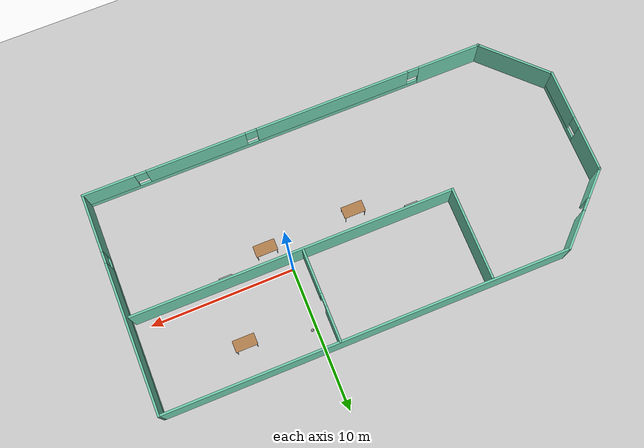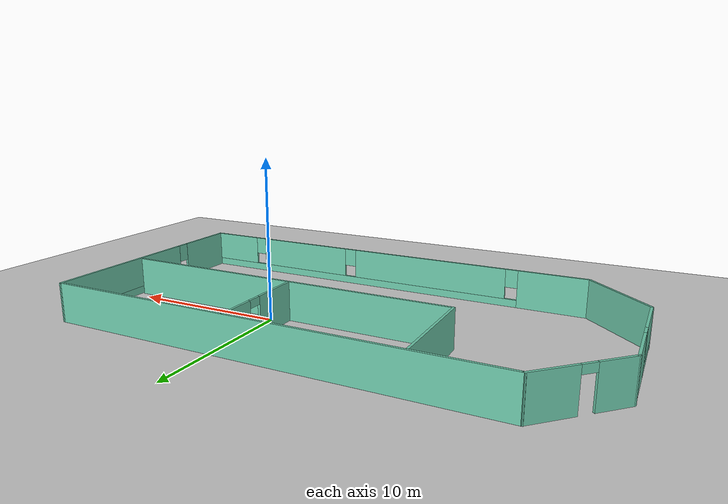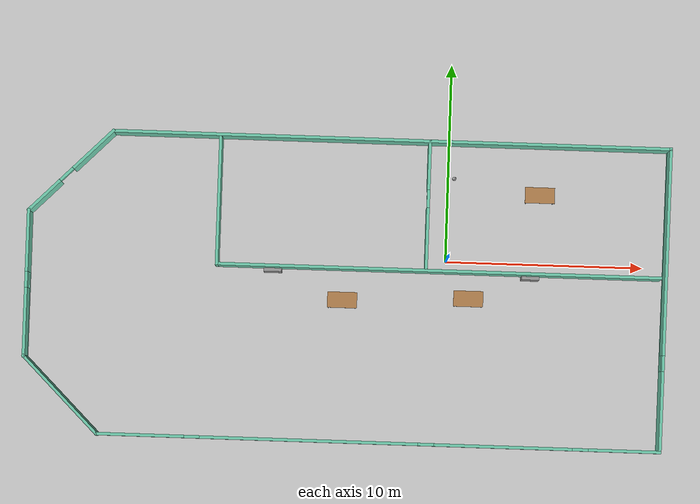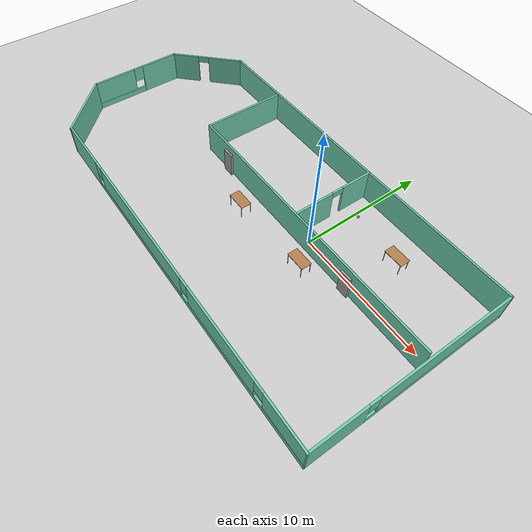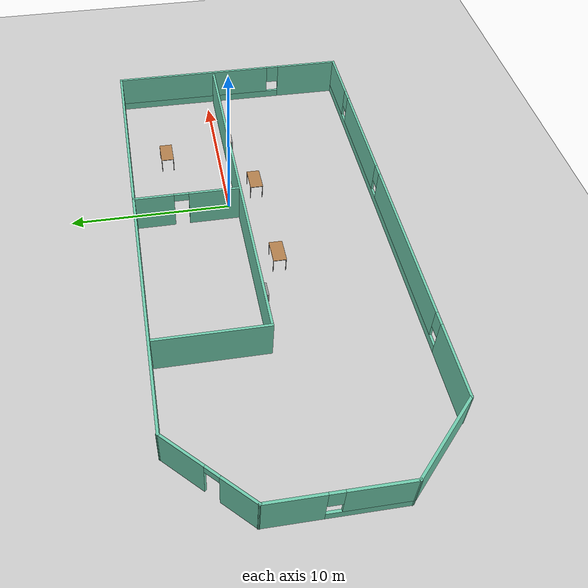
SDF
<sdf version="1.6">
 <world name="default">
  <light name="sun" type="directional">
   <pose>0 0 10 0 -0 0</pose>
   <diffuse>0.8 0.8 0.8 1</diffuse>
   <specular>0.2 0.2 0.2 1</specular>
   <attenuation>
    <range>1000</range>
    <constant>0.9</constant>
    <linear>0.01</linear>
    <quadratic>0.001</quadratic>
   </attenuation>
   <direction>-0.5 0.1 -0.9</direction>
  </light>
  <model name="ground_plane">
   <static>1</static>
   <link name="link">
    <collision name="collision">
     <geometry><plane><normal>0 0 1</normal><size>100 100</size></plane></geometry>
     <surface>
      <contact><collide_bitmask>65535</collide_bitmask></contact>
      <friction><ode><mu>100</mu><mu2>50</mu2></ode></friction>
     </surface>
    </collision>
    <visual name="visual">
     <cast_shadows>0</cast_shadows>
     <geometry><plane><normal>0 0 1</normal><size>100 100</size></plane></geometry>
     <material>
      <script><uri>file://media/materials/scripts/gazebo.material</uri><name>Gazebo/Grey</name></script>
     </material>
    </visual>
   </link>
  </model>
  <gravity>0 0 -9.8</gravity>
  <magnetic_field>6e-06 2.3e-05 -4.2e-05</magnetic_field>
  <atmosphere type="adiabatic"/>
  <physics name="default_physics" default="0" type="ode">
   <max_step_size>0.001</max_step_size>
   <real_time_factor>1</real_time_factor>
   <real_time_update_rate>1000</real_time_update_rate>
  </physics>
  <scene><ambient>0.4 0.4 0.4 1</ambient><background>0.7 0.7 0.7 1</background><shadows>1</shadows></scene>
  <spherical_coordinates>
   <surface_model>EARTH_WGS84</surface_model>
   <latitude_deg>0</latitude_deg>
   <longitude_deg>0</longitude_deg>
   <elevation>0</elevation>
   <heading_deg>0</heading_deg>
  </spherical_coordinates>
  <model name="home_model">
   <pose>-4.99174 -1.66388 0 0 -0 0</pose>
   <link name="Door_0">
    <collision name="Door_0_Collision">
     <geometry><box><size>0.9 0.17 2</size></box></geometry>
     <pose>0 0 1 0 -0 0</pose>
    </collision>
    <visual name="Door_0_Visual">
     <pose>0 0 1 0 -0 0</pose>
     <geometry><box><size>0.9 0.17 2</size></box></geometry>
     <material>
      <script><uri>file://media/materials/scripts/gazebo.material</uri><name>Gazebo/Grey</name></script>
     </material>
    </visual>
    <pose>-3.73693 0.918157 0 0 -0 0</pose>
   </link>
   <link name="Door_1">
    <collision name="Door_1_Collision">
     <geometry><box><size>0.9 0.17 2</size></box></geometry>
     <pose>0 0 1 0 -0 0</pose>
    </collision>
    <visual name="Door_1_Visual">
     <pose>0 0 1 0 -0 0</pose>
     <geometry><box><size>0.9 0.17 2</size></box></geometry>
     <material>
      <script><uri>file://media/materials/scripts/gazebo.material</uri><name>Gazebo/Grey</name></script>
     </material>
    </visual>
    <pose>9.27092 0.918157 0 0 -0 0</pose>
   </link>
   <link name="Wall_11">
    <collision name="Wall_11_Collision">
     <geometry><box><size>6.5 0.15 2.5</size></box></geometry>
     <pose>0 0 1.25 0 -0 0</pose>
    </collision>
    <visual name="Wall_11_Visual">
     <pose>0 0 1.25 0 -0 0</pose>
     <geometry><box><size>6.5 0.15 2.5</size></box></geometry>
     <material>
      <script><uri>file://media/materials/scripts/gazebo.material</uri><name>Gazebo/Grey</name></script>
      <ambient>0.435294 0.796078 0.67451 1</ambient>
     </material>
     <meta><layer>0</layer></meta>
    </visual>
    <pose>-6.55681 4.29256 0 0 0 -1.5708</pose>
   </link>
   <link name="Wall_12">
    <collision name="Wall_12_Collision">
     <geometry><box><size>22.5 0.15 2.5</size></box></geometry>
     <pose>0 0 1.25 0 -0 0</pose>
    </collision>
    <visual name="Wall_12_Visual">
     <pose>0 0 1.25 0 -0 0</pose>
     <geometry><box><size>22.5 0.15 2.5</size></box></geometry>
     <material>
      <script><uri>file://media/materials/scripts/gazebo.material</uri><name>Gazebo/Grey</name></script>
      <ambient>0.435294 0.796078 0.67451 1</ambient>
     </material>
     <meta><layer>0</layer></meta>
    </visual>
    <pose>4.61819 1.11756 0 0 -0 0</pose>
   </link>
   <link name="Wall_14">
    <pose>3.99501 4.42901 0 0 0 -1.5708</pose>
    <visual name="Wall_14_Visual_0">
     <pose>-2.00482 0 1.25 0 -0 0</pose>
     <geometry><box><size>2.49037 0.15 2.5</size></box></geometry>
     <material>
      <script><uri>file://media/materials/scripts/gazebo.material</uri><name>Gazebo/Grey</name></script>
      <ambient>0.435294 0.796078 0.67451 1</ambient>
     </material>
     <meta><layer>0</layer></meta>
    </visual>
    <collision name="Wall_14_Collision_0">
     <geometry><box><size>2.49037 0.15 2.5</size></box></geometry>
     <pose>-2.00482 0 1.25 0 -0 0</pose>
    </collision>
    <visual name="Wall_14_Visual_1">
     <pose>1.69518 0 1.25 0 -0 0</pose>
     <geometry><box><size>3.10963 0.15 2.5</size></box></geometry>
     <material>
      <script><uri>file://media/materials/scripts/gazebo.material</uri><name>Gazebo/Grey</name></script>
      <ambient>0.435294 0.796078 0.67451 1</ambient>
     </material>
     <meta><layer>0</layer></meta>
    </visual>
    <collision name="Wall_14_Collision_1">
     <geometry><box><size>3.10963 0.15 2.5</size></box></geometry>
     <pose>1.69518 0 1.25 0 -0 0</pose>
    </collision>
    <visual name="Wall_14_Visual_2">
     <pose>-0.309635 0 2.25 0 -0 0</pose>
     <geometry><box><size>0.9 0.15 0.5</size></box></geometry>
     <material>
      <script><uri>file://media/materials/scripts/gazebo.material</uri><name>Gazebo/Grey</name></script>
      <ambient>0.435294 0.796078 0.67451 1</ambient>
     </material>
     <meta><layer>0</layer></meta>
    </visual>
    <collision name="Wall_14_Collision_2">
     <geometry><box><size>0.9 0.15 0.5</size></box></geometry>
     <pose>-0.309635 0 2.25 0 -0 0</pose>
    </collision>
   </link>
   <link name="Wall_4">
    <collision name="Wall_4_Collision">
     <geometry><box><size>28.25 0.15 2.5</size></box></geometry>
     <pose>0 0 1.25 0 -0 0</pose>
    </collision>
    <visual name="Wall_4_Visual">
     <pose>0 0 1.25 0 -0 0</pose>
     <geometry><box><size>28.25 0.15 2.5</size></box></geometry>
     <material>
      <script><uri>file://media/materials/scripts/gazebo.material</uri><name>Gazebo/Grey</name></script>
      <ambient>0.435294 0.796078 0.67451 1</ambient>
     </material>
     <meta><layer>0</layer></meta>
    </visual>
    <pose>2.08357 7.6348 0 0 -0 3.14159</pose>
   </link>
   <link name="Wall_5">
    <pose>-14.0347 5.56651 0 0 0 -2.35619</pose>
    <visual name="Wall_5_Visual_0">
     <pose>-1.57656 0 1.25 0 -0 0</pose>
     <geometry><box><size>2.84689 0.15 2.5</size></box></geometry>
     <material>
      <script><uri>file://media/materials/scripts/gazebo.material</uri><name>Gazebo/Grey</name></script>
      <ambient>0.435294 0.796078 0.67451 1</ambient>
     </material>
     <meta><layer>0</layer></meta>
    </visual>
    <collision name="Wall_5_Collision_0">
     <geometry><box><size>2.84689 0.15 2.5</size></box></geometry>
     <pose>-1.57656 0 1.25 0 -0 0</pose>
    </collision>
    <visual name="Wall_5_Visual_1">
     <pose>1.87344 0 1.25 0 -0 0</pose>
     <geometry><box><size>2.25311 0.15 2.5</size></box></geometry>
     <material>
      <script><uri>file://media/materials/scripts/gazebo.material</uri><name>Gazebo/Grey</name></script>
      <ambient>0.435294 0.796078 0.67451 1</ambient>
     </material>
     <meta><layer>0</layer></meta>
    </visual>
    <collision name="Wall_5_Collision_1">
     <geometry><box><size>2.25311 0.15 2.5</size></box></geometry>
     <pose>1.87344 0 1.25 0 -0 0</pose>
    </collision>
    <visual name="Wall_5_Visual_2">
     <pose>0.296889 0 2.25 0 -0 0</pose>
     <geometry><box><size>0.9 0.15 0.5</size></box></geometry>
     <material>
      <script><uri>file://media/materials/scripts/gazebo.material</uri><name>Gazebo/Grey</name></script>
      <ambient>0.435294 0.796078 0.67451 1</ambient>
     </material>
     <meta><layer>0</layer></meta>
    </visual>
    <collision name="Wall_5_Collision_2">
     <geometry><box><size>0.9 0.15 0.5</size></box></geometry>
     <pose>0.296889 0 2.25 0 -0 0</pose>
    </collision>
   </link>
   <link name="Wall_6">
    <pose>-16.103 -0.176777 0 0 0 -1.5708</pose>
    <visual name="Wall_6_Visual_0">
     <pose>-2.16167 0 1.25 0 -0 0</pose>
     <geometry><box><size>3.17667 0.15 2.5</size></box></geometry>
     <material>
      <script><uri>file://media/materials/scripts/gazebo.material</uri><name>Gazebo/Grey</name></script>
      <ambient>0.435294 0.796078 0.67451 1</ambient>
     </material>
     <meta><layer>0</layer></meta>
    </visual>
    <collision name="Wall_6_Collision_0">
     <geometry><box><size>3.17667 0.15 2.5</size></box></geometry>
     <pose>-2.16167 0 1.25 0 -0 0</pose>
    </collision>
    <visual name="Wall_6_Visual_1">
     <pose>1.58833 0 0.25 0 -0 0</pose>
     <geometry><box><size>4.32333 0.15 0.5</size></box></geometry>
     <material>
      <script><uri>file://media/materials/scripts/gazebo.material</uri><name>Gazebo/Grey</name></script>
      <ambient>0.435294 0.796078 0.67451 1</ambient>
     </material>
     <meta><layer>0</layer></meta>
    </visual>
    <collision name="Wall_6_Collision_1">
     <geometry><box><size>4.32333 0.15 0.5</size></box></geometry>
     <pose>1.58833 0 0.25 0 -0 0</pose>
    </collision>
    <visual name="Wall_6_Visual_2">
     <pose>1.98833 0 1.5 0 -0 0</pose>
     <geometry><box><size>3.52333 0.15 2</size></box></geometry>
     <material>
      <script><uri>file://media/materials/scripts/gazebo.material</uri><name>Gazebo/Grey</name></script>
      <ambient>0.435294 0.796078 0.67451 1</ambient>
     </material>
     <meta><layer>0</layer></meta>
    </visual>
    <collision name="Wall_6_Collision_2">
     <geometry><box><size>3.52333 0.15 2</size></box></geometry>
     <pose>1.98833 0 1.5 0 -0 0</pose>
    </collision>
    <visual name="Wall_6_Visual_3">
     <pose>-0.173333 0 1.9 0 -0 0</pose>
     <geometry><box><size>0.8 0.15 1.2</size></box></geometry>
     <material>
      <script><uri>file://media/materials/scripts/gazebo.material</uri><name>Gazebo/Grey</name></script>
      <ambient>0.435294 0.796078 0.67451 1</ambient>
     </material>
     <meta><layer>0</layer></meta>
    </visual>
    <collision name="Wall_6_Collision_3">
     <geometry><box><size>0.8 0.15 1.2</size></box></geometry>
     <pose>-0.173333 0 1.9 0 -0 0</pose>
    </collision>
   </link>
   <link name="Wall_7">
    <collision name="Wall_7_Collision">
     <geometry><box><size>5.5 0.15 2.5</size></box></geometry>
     <pose>0 0 1.25 0 -0 0</pose>
    </collision>
    <visual name="Wall_7_Visual">
     <pose>0 0 1.25 0 -0 0</pose>
     <geometry><box><size>5.5 0.15 2.5</size></box></geometry>
     <material>
      <script><uri>file://media/materials/scripts/gazebo.material</uri><name>Gazebo/Grey</name></script>
      <ambient>0.435294 0.796078 0.67451 1</ambient>
     </material>
     <meta><layer>0</layer></meta>
    </visual>
    <pose>-14.2115 -5.74329 0 0 0 -0.785398</pose>
   </link>
   <link name="Wall_8">
    <pose>1.85501 -7.6348 0 0 -0 0</pose>
    <visual name="Wall_8_Visual_0">
     <pose>-12.0051 0 1.25 0 -0 0</pose>
     <geometry><box><size>4.48972 0.15 2.5</size></box></geometry>
     <material>
      <script><uri>file://media/materials/scripts/gazebo.material</uri><name>Gazebo/Grey</name></script>
      <ambient>0.435294 0.796078 0.67451 1</ambient>
     </material>
     <meta><layer>0</layer></meta>
    </visual>
    <collision name="Wall_8_Collision_0">
     <geometry><box><size>4.48972 0.15 2.5</size></box></geometry>
     <pose>-12.0051 0 1.25 0 -0 0</pose>
    </collision>
    <visual name="Wall_8_Visual_1">
     <pose>2.24486 0 0.25 0 -0 0</pose>
     <geometry><box><size>24.0103 0.15 0.5</size></box></geometry>
     <material>
      <script><uri>file://media/materials/scripts/gazebo.material</uri><name>Gazebo/Grey</name></script>
      <ambient>0.435294 0.796078 0.67451 1</ambient>
     </material>
     <meta><layer>0</layer></meta>
    </visual>
    <collision name="Wall_8_Collision_1">
     <geometry><box><size>24.0103 0.15 0.5</size></box></geometry>
     <pose>2.24486 0 0.25 0 -0 0</pose>
    </collision>
    <visual name="Wall_8_Visual_2">
     <pose>-3.47943 0 1.5 0 -0 0</pose>
     <geometry><box><size>10.9617 0.15 2</size></box></geometry>
     <material>
      <script><uri>file://media/materials/scripts/gazebo.material</uri><name>Gazebo/Grey</name></script>
      <ambient>0.435294 0.796078 0.67451 1</ambient>
     </material>
     <meta><layer>0</layer></meta>
    </visual>
    <collision name="Wall_8_Collision_2">
     <geometry><box><size>10.9617 0.15 2</size></box></geometry>
     <pose>-3.47943 0 1.5 0 -0 0</pose>
    </collision>
    <visual name="Wall_8_Visual_3">
     <pose>6.28759 0 1.5 0 -0 0</pose>
     <geometry><box><size>6.97235 0.15 2</size></box></geometry>
     <material>
      <script><uri>file://media/materials/scripts/gazebo.material</uri><name>Gazebo/Grey</name></script>
      <ambient>0.435294 0.796078 0.67451 1</ambient>
     </material>
     <meta><layer>0</layer></meta>
    </visual>
    <collision name="Wall_8_Collision_3">
     <geometry><box><size>6.97235 0.15 2</size></box></geometry>
     <pose>6.28759 0 1.5 0 -0 0</pose>
    </collision>
    <visual name="Wall_8_Visual_4">
     <pose>12.4119 0 1.5 0 -0 0</pose>
     <geometry><box><size>3.67624 0.15 2</size></box></geometry>
     <material>
      <script><uri>file://media/materials/scripts/gazebo.material</uri><name>Gazebo/Grey</name></script>
      <ambient>0.435294 0.796078 0.67451 1</ambient>
     </material>
     <meta><layer>0</layer></meta>
    </visual>
    <collision name="Wall_8_Collision_4">
     <geometry><box><size>3.67624 0.15 2</size></box></geometry>
     <pose>12.4119 0 1.5 0 -0 0</pose>
    </collision>
    <visual name="Wall_8_Visual_5">
     <pose>-9.36028 0 1.9 0 -0 0</pose>
     <geometry><box><size>0.8 0.15 1.2</size></box></geometry>
     <material>
      <script><uri>file://media/materials/scripts/gazebo.material</uri><name>Gazebo/Grey</name></script>
      <ambient>0.435294 0.796078 0.67451 1</ambient>
     </material>
     <meta><layer>0</layer></meta>
    </visual>
    <collision name="Wall_8_Collision_5">
     <geometry><box><size>0.8 0.15 1.2</size></box></geometry>
     <pose>-9.36028 0 1.9 0 -0 0</pose>
    </collision>
    <visual name="Wall_8_Visual_6">
     <pose>2.40141 0 1.9 0 -0 0</pose>
     <geometry><box><size>0.8 0.15 1.2</size></box></geometry>
     <material>
      <script><uri>file://media/materials/scripts/gazebo.material</uri><name>Gazebo/Grey</name></script>
      <ambient>0.435294 0.796078 0.67451 1</ambient>
     </material>
     <meta><layer>0</layer></meta>
    </visual>
    <collision name="Wall_8_Collision_6">
     <geometry><box><size>0.8 0.15 1.2</size></box></geometry>
     <pose>2.40141 0 1.9 0 -0 0</pose>
    </collision>
    <visual name="Wall_8_Visual_7">
     <pose>10.1738 0 1.9 0 -0 0</pose>
     <geometry><box><size>0.8 0.15 1.2</size></box></geometry>
     <material>
      <script><uri>file://media/materials/scripts/gazebo.material</uri><name>Gazebo/Grey</name></script>
      <ambient>0.435294 0.796078 0.67451 1</ambient>
     </material>
     <meta><layer>0</layer></meta>
    </visual>
    <collision name="Wall_8_Collision_7">
     <geometry><box><size>0.8 0.15 1.2</size></box></geometry>
     <pose>10.1738 0 1.9 0 -0 0</pose>
    </collision>
   </link>
   <link name="Wall_9">
    <pose>16.0818 0 0 0 -0 1.56401</pose>
    <visual name="Wall_9_Visual_0">
     <pose>-5.63519 0 1.25 0 -0 0</pose>
     <geometry><box><size>4.14957 0.15 2.5</size></box></geometry>
     <material>
      <script><uri>file://media/materials/scripts/gazebo.material</uri><name>Gazebo/Grey</name></script>
      <ambient>0.435294 0.796078 0.67451 1</ambient>
     </material>
     <meta><layer>0</layer></meta>
    </visual>
    <collision name="Wall_9_Collision_0">
     <geometry><box><size>4.14957 0.15 2.5</size></box></geometry>
     <pose>-5.63519 0 1.25 0 -0 0</pose>
    </collision>
    <visual name="Wall_9_Visual_1">
     <pose>2.07478 0 0.25 0 -0 0</pose>
     <geometry><box><size>11.2704 0.15 0.5</size></box></geometry>
     <material>
      <script><uri>file://media/materials/scripts/gazebo.material</uri><name>Gazebo/Grey</name></script>
      <ambient>0.435294 0.796078 0.67451 1</ambient>
     </material>
     <meta><layer>0</layer></meta>
    </visual>
    <collision name="Wall_9_Collision_1">
     <geometry><box><size>11.2704 0.15 0.5</size></box></geometry>
     <pose>2.07478 0 0.25 0 -0 0</pose>
    </collision>
    <visual name="Wall_9_Visual_2">
     <pose>2.47478 0 1.5 0 -0 0</pose>
     <geometry><box><size>10.4704 0.15 2</size></box></geometry>
     <material>
      <script><uri>file://media/materials/scripts/gazebo.material</uri><name>Gazebo/Grey</name></script>
      <ambient>0.435294 0.796078 0.67451 1</ambient>
     </material>
     <meta><layer>0</layer></meta>
    </visual>
    <collision name="Wall_9_Collision_2">
     <geometry><box><size>10.4704 0.15 2</size></box></geometry>
     <pose>2.47478 0 1.5 0 -0 0</pose>
    </collision>
    <visual name="Wall_9_Visual_3">
     <pose>-3.1604 0 1.9 0 -0 0</pose>
     <geometry><box><size>0.8 0.15 1.2</size></box></geometry>
     <material>
      <script><uri>file://media/materials/scripts/gazebo.material</uri><name>Gazebo/Grey</name></script>
      <ambient>0.435294 0.796078 0.67451 1</ambient>
     </material>
     <meta><layer>0</layer></meta>
    </visual>
    <collision name="Wall_9_Collision_3">
     <geometry><box><size>0.8 0.15 1.2</size></box></geometry>
     <pose>-3.1604 0 1.9 0 -0 0</pose>
    </collision>
   </link>
   <static>1</static>
  </model>
  <model name="table">
   <static>1</static>
   <link name="link">
    <collision name="surface">
     <pose>0 0 1 0 -0 0</pose>
     <geometry><box><size>1.5 0.8 0.03</size></box></geometry>
     <surface><friction><ode><mu>0.6</mu><mu2>0.6</mu2></ode></friction></surface>
    </collision>
    <visual name="visual1">
     <pose>0 0 1 0 -0 0</pose>
     <geometry><box><size>1.5 0.8 0.03</size></box></geometry>
     <material>
      <script><uri>file://media/materials/scripts/gazebo.material</uri><name>Gazebo/Wood</name></script>
     </material>
    </visual>
    <collision name="front_left_leg">
     <pose>0.68 0.38 0.5 0 -0 0</pose>
     <geometry><cylinder><radius>0.02</radius><length>1</length></cylinder></geometry>
    </collision>
    <visual name="front_left_leg">
     <pose>0.68 0.38 0.5 0 -0 0</pose>
     <geometry><cylinder><radius>0.02</radius><length>1</length></cylinder></geometry>
     <material>
      <script><uri>file://media/materials/scripts/gazebo.material</uri><name>Gazebo/Grey</name></script>
     </material>
    </visual>
    <collision name="front_right_leg">
     <pose>0.68 -0.38 0.5 0 -0 0</pose>
     <geometry><cylinder><radius>0.02</radius><length>1</length></cylinder></geometry>
    </collision>
    <visual name="front_right_leg">
     <pose>0.68 -0.38 0.5 0 -0 0</pose>
     <geometry><cylinder><radius>0.02</radius><length>1</length></cylinder></geometry>
     <material>
      <script><uri>file://media/materials/scripts/gazebo.material</uri><name>Gazebo/Grey</name></script>
     </material>
    </visual>
    <collision name="back_right_leg">
     <pose>-0.68 -0.38 0.5 0 -0 0</pose>
     <geometry><cylinder><radius>0.02</radius><length>1</length></cylinder></geometry>
    </collision>
    <visual name="back_right_leg">
     <pose>-0.68 -0.38 0.5 0 -0 0</pose>
     <geometry><cylinder><radius>0.02</radius><length>1</length></cylinder></geometry>
     <material>
      <script><uri>file://media/materials/scripts/gazebo.material</uri><name>Gazebo/Grey</name></script>
     </material>
    </visual>
    <collision name="back_left_leg">
     <pose>-0.68 0.38 0.5 0 -0 0</pose>
     <geometry><cylinder><radius>0.02</radius><length>1</length></cylinder></geometry>
    </collision>
    <visual name="back_left_leg">
     <pose>-0.68 0.38 0.5 0 -0 0</pose>
     <geometry><cylinder><radius>0.02</radius><length>1</length></cylinder></geometry>
     <material>
      <script><uri>file://media/materials/scripts/gazebo.material</uri><name>Gazebo/Grey</name></script>
     </material>
    </visual>
   </link>
   <pose>1.20501 -1.85998 0 0 -0 0</pose>
  </model>
  <model name="table_0">
   <static>1</static>
   <link name="link">
    <collision name="surface">
     <pose>0 0 1 0 -0 0</pose>
     <geometry><box><size>1.5 0.8 0.03</size></box></geometry>
     <surface><friction><ode><mu>0.6</mu><mu2>0.6</mu2></ode></friction></surface>
    </collision>
    <visual name="visual1">
     <pose>0 0 1 0 -0 0</pose>
     <geometry><box><size>1.5 0.8 0.03</size></box></geometry>
     <material>
      <script><uri>file://media/materials/scripts/gazebo.material</uri><name>Gazebo/Wood</name></script>
     </material>
    </visual>
    <collision name="front_left_leg">
     <pose>0.68 0.38 0.5 0 -0 0</pose>
     <geometry><cylinder><radius>0.02</radius><length>1</length></cylinder></geometry>
    </collision>
    <visual name="front_left_leg">
     <pose>0.68 0.38 0.5 0 -0 0</pose>
     <geometry><cylinder><radius>0.02</radius><length>1</length></cylinder></geometry>
     <material>
      <script><uri>file://media/materials/scripts/gazebo.material</uri><name>Gazebo/Grey</name></script>
     </material>
    </visual>
    <collision name="front_right_leg">
     <pose>0.68 -0.38 0.5 0 -0 0</pose>
     <geometry><cylinder><radius>0.02</radius><length>1</length></cylinder></geometry>
    </collision>
    <visual name="front_right_leg">
     <pose>0.68 -0.38 0.5 0 -0 0</pose>
     <geometry><cylinder><radius>0.02</radius><length>1</length></cylinder></geometry>
     <material>
      <script><uri>file://media/materials/scripts/gazebo.material</uri><name>Gazebo/Grey</name></script>
     </material>
    </visual>
    <collision name="back_right_leg">
     <pose>-0.68 -0.38 0.5 0 -0 0</pose>
     <geometry><cylinder><radius>0.02</radius><length>1</length></cylinder></geometry>
    </collision>
    <visual name="back_right_leg">
     <pose>-0.68 -0.38 0.5 0 -0 0</pose>
     <geometry><cylinder><radius>0.02</radius><length>1</length></cylinder></geometry>
     <material>
      <script><uri>file://media/materials/scripts/gazebo.material</uri><name>Gazebo/Grey</name></script>
     </material>
    </visual>
    <collision name="back_left_leg">
     <pose>-0.68 0.38 0.5 0 -0 0</pose>
     <geometry><cylinder><radius>0.02</radius><length>1</length></cylinder></geometry>
    </collision>
    <visual name="back_left_leg">
     <pose>-0.68 0.38 0.5 0 -0 0</pose>
     <geometry><cylinder><radius>0.02</radius><length>1</length></cylinder></geometry>
     <material>
      <script><uri>file://media/materials/scripts/gazebo.material</uri><name>Gazebo/Grey</name></script>
     </material>
    </visual>
   </link>
   <pose>-5.17194 -2.12611 0 0 -0 0</pose>
  </model>
  <model name="table_1">
   <static>1</static>
   <link name="link">
    <collision name="surface">
     <pose>0 0 1 0 -0 0</pose>
     <geometry><box><size>1.5 0.8 0.03</size></box></geometry>
     <surface><friction><ode><mu>0.6</mu><mu2>0.6</mu2></ode></friction></surface>
    </collision>
    <visual name="visual1">
     <pose>0 0 1 0 -0 0</pose>
     <geometry><box><size>1.5 0.8 0.03</size></box></geometry>
     <material>
      <script><uri>file://media/materials/scripts/gazebo.material</uri><name>Gazebo/Wood</name></script>
     </material>
    </visual>
    <collision name="front_left_leg">
     <pose>0.68 0.38 0.5 0 -0 0</pose>
     <geometry><cylinder><radius>0.02</radius><length>1</length></cylinder></geometry>
    </collision>
    <visual name="front_left_leg">
     <pose>0.68 0.38 0.5 0 -0 0</pose>
     <geometry><cylinder><radius>0.02</radius><length>1</length></cylinder></geometry>
     <material>
      <script><uri>file://media/materials/scripts/gazebo.material</uri><name>Gazebo/Grey</name></script>
     </material>
    </visual>
    <collision name="front_right_leg">
     <pose>0.68 -0.38 0.5 0 -0 0</pose>
     <geometry><cylinder><radius>0.02</radius><length>1</length></cylinder></geometry>
    </collision>
    <visual name="front_right_leg">
     <pose>0.68 -0.38 0.5 0 -0 0</pose>
     <geometry><cylinder><radius>0.02</radius><length>1</length></cylinder></geometry>
     <material>
      <script><uri>file://media/materials/scripts/gazebo.material</uri><name>Gazebo/Grey</name></script>
     </material>
    </visual>
    <collision name="back_right_leg">
     <pose>-0.68 -0.38 0.5 0 -0 0</pose>
     <geometry><cylinder><radius>0.02</radius><length>1</length></cylinder></geometry>
    </collision>
    <visual name="back_right_leg">
     <pose>-0.68 -0.38 0.5 0 -0 0</pose>
     <geometry><cylinder><radius>0.02</radius><length>1</length></cylinder></geometry>
     <material>
      <script><uri>file://media/materials/scripts/gazebo.material</uri><name>Gazebo/Grey</name></script>
     </material>
    </visual>
    <collision name="back_left_leg">
     <pose>-0.68 0.38 0.5 0 -0 0</pose>
     <geometry><cylinder><radius>0.02</radius><length>1</length></cylinder></geometry>
    </collision>
    <visual name="back_left_leg">
     <pose>-0.68 0.38 0.5 0 -0 0</pose>
     <geometry><cylinder><radius>0.02</radius><length>1</length></cylinder></geometry>
     <material>
      <script><uri>file://media/materials/scripts/gazebo.material</uri><name>Gazebo/Grey</name></script>
     </material>
    </visual>
   </link>
   <pose>4.66193 3.499 0 0 -0 0</pose>
  </model>
  <model name="my_ball">
   <link name="link_2">
    <inertial>
     <mass>1</mass>
     <inertia><ixx>0.1</ixx><ixy>0</ixy><ixz>0</ixz><iyy>0.1</iyy><iyz>0</iyz><izz>0.1</izz></inertia>
    </inertial>
    <visual name="visual">
     <geometry><sphere><radius>0.1</radius></sphere></geometry>
     <material>
      <lighting>1</lighting>
      <script><uri>file://media/materials/scripts/gazebo.material</uri><name>Gazebo/Grey</name></script>
      <shader type="pixel"><normal_map>__default__</normal_map></shader>
      <ambient>1 1 1 1</ambient>
      <diffuse>1 1 1 1</diffuse>
      <specular>1 1 1 1</specular>
      <emissive>1 1 1 1</emissive>
     </material>
    </visual>
    <collision name="collision">
     <geometry><sphere><radius>0.1</radius></sphere></geometry>
     <surface>
      <friction>
       <ode><mu>1</mu><mu2>1</mu2><fdir1>0 0 0</fdir1><slip1>0</slip1><slip2>0</slip2></ode>
       <torsional>
        <coefficient>1</coefficient>
        <patch_radius>0</patch_radius>
        <surface_radius>0</surface_radius>
        <use_patch_radius>1</use_patch_radius>
        <ode><slip>0</slip></ode>
       </torsional>
      </friction>
      <bounce><restitution_coefficient>0</restitution_coefficient><threshold>1e+06</threshold></bounce>
      <contact>
       <collide_without_contact>0</collide_without_contact>
       <collide_without_contact_bitmask>1</collide_without_contact_bitmask>
       <collide_bitmask>1</collide_bitmask>
       <ode>
        <soft_cfm>0</soft_cfm>
        <soft_erp>0.2</soft_erp>
        <kp>1e+13</kp>
        <kd>1</kd>
        <max_vel>0.01</max_vel>
        <min_depth>0</min_depth>
       </ode>
       <bullet>
        <split_impulse>1</split_impulse>
        <split_impulse_penetration_threshold>-0.01</split_impulse_penetration_threshold>
        <soft_cfm>0</soft_cfm>
        <soft_erp>0.2</soft_erp>
        <kp>1e+13</kp>
        <kd>1</kd>
       </bullet>
      </contact>
     </surface>
    </collision>
   </link>
   <static>0</static>
   <pose>0.315997 4.25109 0.1 0 -0 0</pose>
  </model>
 </world>
</sdf>
